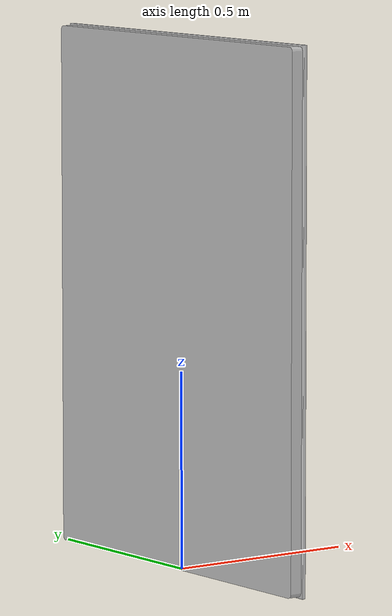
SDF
<?xml version='1.0'?>
<sdf version='1.4'>
  <model name='s__1165'>
    <pose>0 0 0 0 0 0</pose>
    <static>true</static>
    <link name='link'>
      <collision name='collision'>
        <pose>0 0 0 0 0 0</pose>
        <geometry>
          <box>
            <size>0.0500006 0.98 2</size>
          </box>
        </geometry>
      </collision>
      <visual name='visual'>
        <pose>0 0 0 0 0 0</pose>
        <geometry>
          <mesh><uri>model://s__1165/s__1165.dae</uri></mesh>
        </geometry>
      </visual>
    </link>
  </model>
</sdf>
